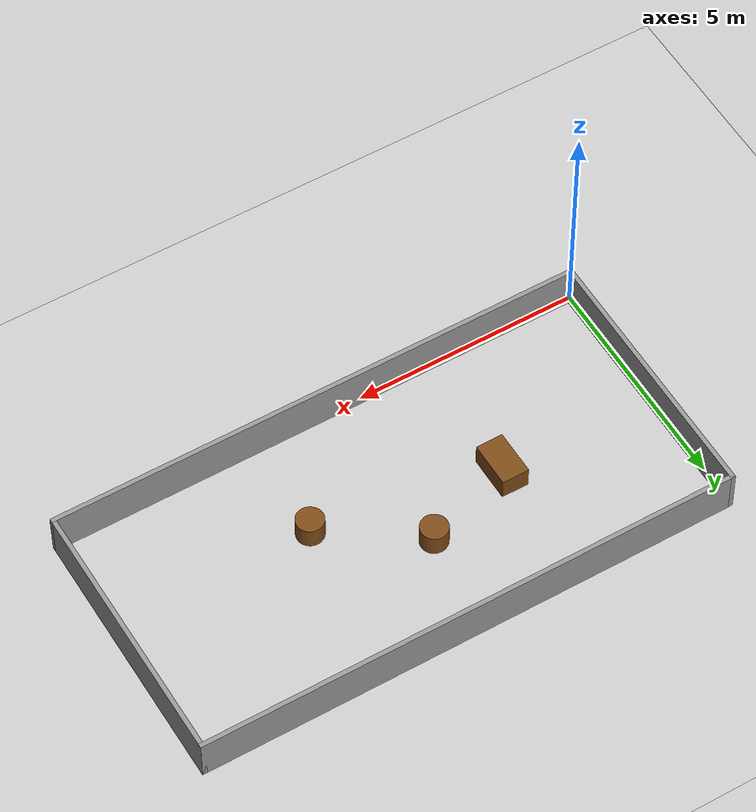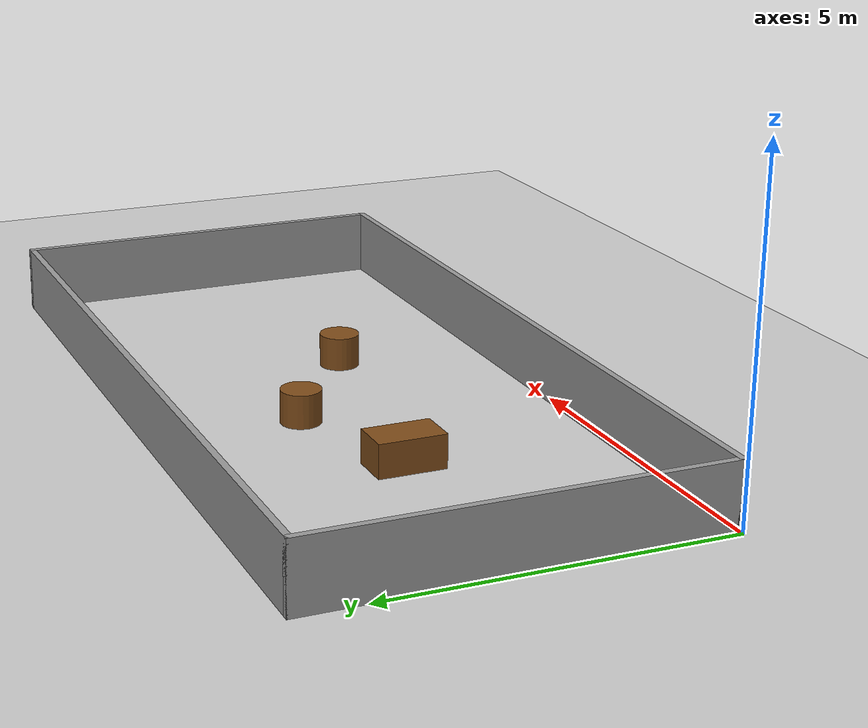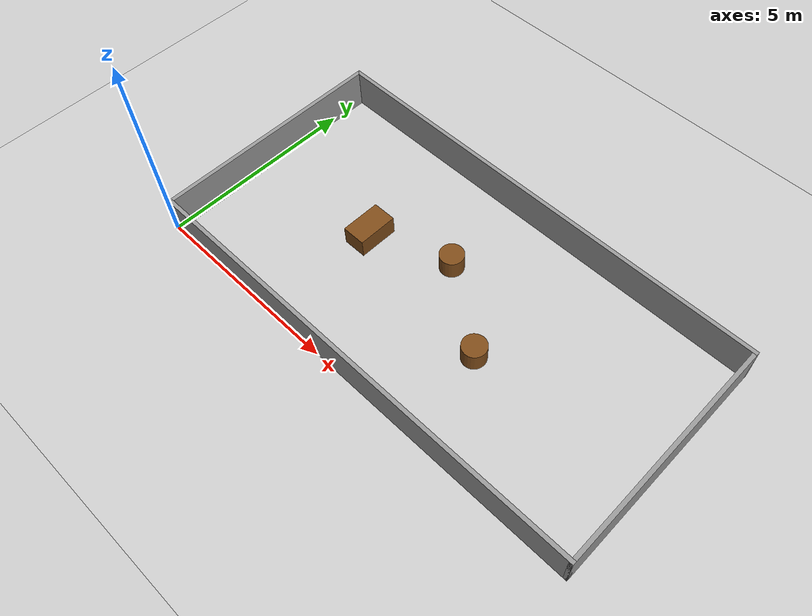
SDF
<?xml version="1.0"?>
<sdf version="1.9">
  <world name="obstacle_world">

    <physics name="default" type="ignored">
      <max_step_size>0.001</max_step_size>
      <real_time_factor>1.0</real_time_factor>
    </physics>
    <plugin filename="gz-sim-physics-system"
            name="gz::sim::systems::Physics"/>
    <plugin filename="gz-sim-user-commands-system"
            name="gz::sim::systems::UserCommands"/>
    <plugin filename="gz-sim-scene-broadcaster-system"
            name="gz::sim::systems::SceneBroadcaster"/>
    <plugin filename="gz-sim-sensors-system"
            name="gz::sim::systems::Sensors">
      <render_engine>ogre2</render_engine>
    </plugin>

    <light name="sun" type="directional">
      <cast_shadows>true</cast_shadows>
      <pose>0 0 10 0 0 0</pose>
      <diffuse>0.8 0.8 0.8 1</diffuse>
      <specular>0.2 0.2 0.2 1</specular>
      <direction>-0.5 0.1 -0.9</direction>
    </light>

    <model name="ground_plane">
      <static>true</static>
      <link name="link">
        <collision name="collision">
          <geometry><plane><normal>0 0 1</normal><size>100 100</size></plane></geometry>
        </collision>
        <visual name="visual">
          <geometry><plane><normal>0 0 1</normal><size>100 100</size></plane></geometry>
          <material><ambient>0.8 0.8 0.8 1</ambient><diffuse>0.8 0.8 0.8 1</diffuse></material>
        </visual>
      </link>
    </model>

    <!-- Walls: 12 m x 6 m arena -->
    <model name="wall_south">
      <static>true</static>
      <pose>6.0 0.05 0.5 0 0 0</pose>
      <link name="link">
        <collision name="col"><geometry><box><size>12.0 0.1 1.0</size></box></geometry></collision>
        <visual name="vis">
          <geometry><box><size>12.0 0.1 1.0</size></box></geometry>
          <material><ambient>0.6 0.6 0.6 1</ambient><diffuse>0.6 0.6 0.6 1</diffuse></material>
        </visual>
      </link>
    </model>

    <model name="wall_north">
      <static>true</static>
      <pose>6.0 5.95 0.5 0 0 0</pose>
      <link name="link">
        <collision name="col"><geometry><box><size>12.0 0.1 1.0</size></box></geometry></collision>
        <visual name="vis">
          <geometry><box><size>12.0 0.1 1.0</size></box></geometry>
          <material><ambient>0.6 0.6 0.6 1</ambient><diffuse>0.6 0.6 0.6 1</diffuse></material>
        </visual>
      </link>
    </model>

    <model name="wall_west">
      <static>true</static>
      <pose>0.05 3.0 0.5 0 0 0</pose>
      <link name="link">
        <collision name="col"><geometry><box><size>0.1 6.0 1.0</size></box></geometry></collision>
        <visual name="vis">
          <geometry><box><size>0.1 6.0 1.0</size></box></geometry>
          <material><ambient>0.6 0.6 0.6 1</ambient><diffuse>0.6 0.6 0.6 1</diffuse></material>
        </visual>
      </link>
    </model>

    <model name="wall_east">
      <static>true</static>
      <pose>11.95 3.0 0.5 0 0 0</pose>
      <link name="link">
        <collision name="col"><geometry><box><size>0.1 6.0 1.0</size></box></geometry></collision>
        <visual name="vis">
          <geometry><box><size>0.1 6.0 1.0</size></box></geometry>
          <material><ambient>0.6 0.6 0.6 1</ambient><diffuse>0.6 0.6 0.6 1</diffuse></material>
        </visual>
      </link>
    </model>

    <!-- Obstacle 1: central block on the direct path -->
    <model name="obstacle_1">
      <static>true</static>
      <pose>3.5 3.0 0.25 0 0 0</pose>
      <link name="link">
        <collision name="col"><geometry><box><size>0.6 1.0 0.5</size></box></geometry></collision>
        <visual name="vis">
          <geometry><box><size>0.6 1.0 0.5</size></box></geometry>
          <material><ambient>0.5 0.3 0.1 1</ambient><diffuse>0.5 0.3 0.1 1</diffuse></material>
        </visual>
      </link>
    </model>

    <!-- Obstacle 2: north cylinder, close to obstacle 1 -->
    <model name="obstacle_2">
      <static>true</static>
      <pose>5.5 3.7 0.25 0 0 0</pose>
      <link name="link">
        <collision name="col"><geometry><cylinder><radius>0.3</radius><length>0.5</length></cylinder></geometry></collision>
        <visual name="vis">
          <geometry><cylinder><radius>0.3</radius><length>0.5</length></cylinder></geometry>
          <material><ambient>0.5 0.3 0.1 1</ambient><diffuse>0.5 0.3 0.1 1</diffuse></material>
        </visual>
      </link>
    </model>

    <!-- Obstacle 3: south cylinder, farther from obstacle 1 -->
    <model name="obstacle_3">
      <static>true</static>
      <pose>7.5 2.3 0.25 0 0 0</pose>
      <link name="link">
        <collision name="col"><geometry><cylinder><radius>0.3</radius><length>0.5</length></cylinder></geometry></collision>
        <visual name="vis">
          <geometry><cylinder><radius>0.3</radius><length>0.5</length></cylinder></geometry>
          <material><ambient>0.5 0.3 0.1 1</ambient><diffuse>0.5 0.3 0.1 1</diffuse></material>
        </visual>
      </link>
    </model>

  </world>
</sdf>
